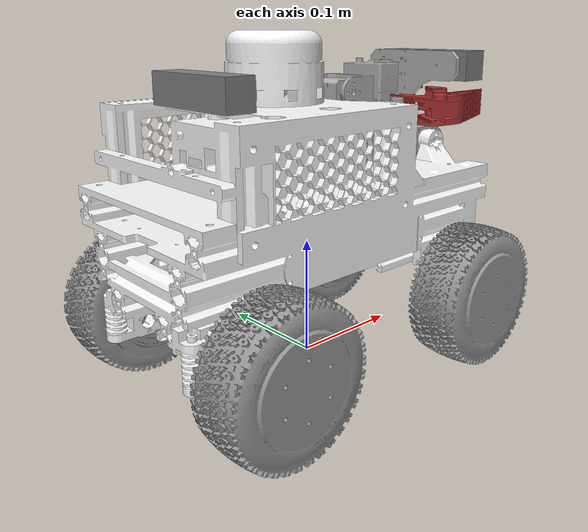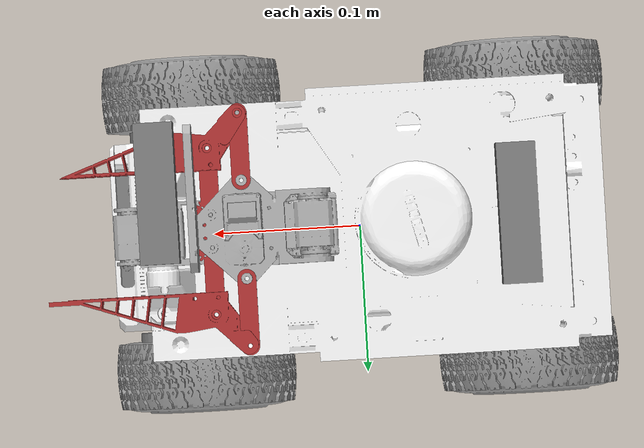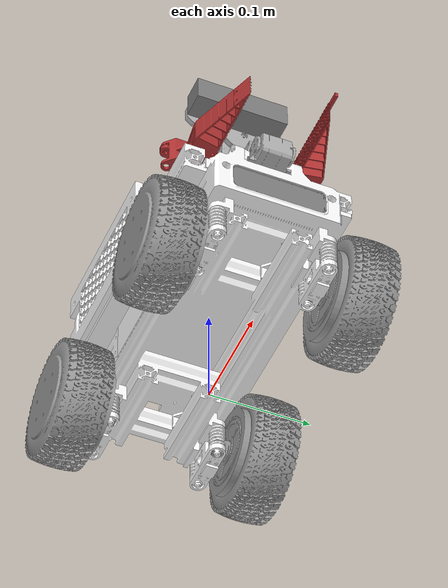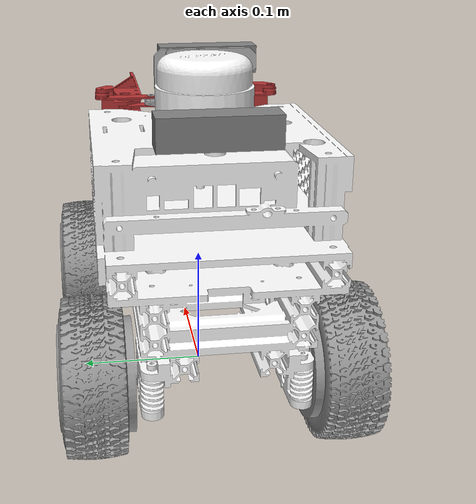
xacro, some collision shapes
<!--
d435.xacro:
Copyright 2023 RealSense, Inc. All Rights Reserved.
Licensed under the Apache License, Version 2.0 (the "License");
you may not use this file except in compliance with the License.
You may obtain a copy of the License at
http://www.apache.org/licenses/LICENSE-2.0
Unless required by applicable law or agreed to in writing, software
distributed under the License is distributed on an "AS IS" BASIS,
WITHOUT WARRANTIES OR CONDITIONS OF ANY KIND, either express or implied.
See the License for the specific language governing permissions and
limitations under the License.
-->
<?xml version="1.0"?>
<robot xmlns:xacro="http://www.ros.org/wiki/xacro"  name="quac_robot">

    <xacro:property name="mesh_scale" value="1"/>
    <xacro:arg name="mesh_folder" default="mesh_folder_path/"/>
    <xacro:property name="mesh_folder" value="$(arg mesh_folder)"/>

    <xacro:include filename="inertial_macros.xacro" />
    <xacro:include filename="servo.xacro" />
    <xacro:include filename="d435.xacro" />
    <xacro:include filename="oak_d_lite.xacro" />

    <xacro:include filename="version_6/chassis.xacro" />

    <link name="base_link"/>

    <joint name="base_footprint_joint" type="fixed">
        <parent link="base_link"/>
        <child link="base_footprint"/>
        <origin xyz="0 0 0" rpy="0 0 0"/>
    </joint>

    <link name="base_footprint"/>

</robot>

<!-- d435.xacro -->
<!-- modified by wggRobotics-->

<!--
This is the URDF model for the RealSense 430 camera, in its
aluminum peripherial evaluation case.
-->

<robot xmlns:xacro="http://ros.org/wiki/xacro">
  <!-- Includes -->

  <material name="aluminum">
    <color rgba="0.5 0.5 0.5 1"/>
  </material>

  <xacro:macro name="sensor_d435" params="parent *origin name:=camera use_nominal_extrinsics:=false">
    <xacro:property name="M_PI" value="3.1415926535897931" />

    <!-- The following values are approximate, and the camera node
     publishing TF values with actual calibrated camera extrinsic values -->
    <xacro:property name="d435_cam_depth_to_stereo_left_offset" value="0.0"/>
    <xacro:property name="d435_cam_depth_to_stereo_right_offset" value="-0.050"/>
    <xacro:property name="d435_cam_depth_to_color_offset" value="0.015"/>

    <!-- The following values model the aluminum peripherial case for the
  	D435 camera, with the camera joint represented by the actual
  	peripherial camera tripod mount -->
    <xacro:property name="d435_cam_width" value="0.090"/>
    <xacro:property name="d435_cam_height" value="0.025"/>
    <xacro:property name="d435_cam_depth" value="0.02505"/>
    <xacro:property name="d435_cam_mount_from_center_offset" value="0.0149"/>
    <!-- glass cover is 0.1 mm inwards from front aluminium plate -->
    <xacro:property name="d435_glass_to_front" value="0.1e-3"/>
    <!-- see datasheet Revision 007, Fig. 4-4 page 65 -->
    <xacro:property name="d435_zero_depth_to_glass" value="4.2e-3"/>
    <!-- convenience precomputation to avoid clutter-->
    <xacro:property name="d435_mesh_x_offset" value="${d435_cam_mount_from_center_offset-d435_glass_to_front-d435_zero_depth_to_glass}"/>

    <!-- The following offset is relative the the physical D435 camera peripherial
  	camera tripod mount -->
    <xacro:property name="d435_cam_depth_px" value="${d435_cam_mount_from_center_offset}"/>
    <xacro:property name="d435_cam_depth_py" value="0.0175"/>
    <xacro:property name="d435_cam_depth_pz" value="${d435_cam_height/2}"/>

    <!-- camera body, with origin at bottom screw mount -->
    <joint name="${name}_joint" type="fixed">
      <xacro:insert_block name="origin" />
      <parent link="${parent}"/>
      <child link="${name}_bottom_screw_frame" />
    </joint>
    <link name="${name}_bottom_screw_frame"/>

    <joint name="${name}_link_joint" type="fixed">
      <origin xyz="${d435_mesh_x_offset} ${d435_cam_depth_py} ${d435_cam_depth_pz}" rpy="0 0 0"/>
      <parent link="${name}_bottom_screw_frame"/>
      <child link="${name}_link" />
    </joint>

    <link name="${name}_link">
      <visual>
        <!-- the mesh origin is at front plate in between the two infrared camera axes -->
        <origin xyz="${d435_zero_depth_to_glass + d435_glass_to_front} ${-d435_cam_depth_py} 0" rpy="${M_PI/2} 0 ${M_PI/2}"/>
        <geometry>
          <mesh filename="${mesh_folder}d435.dae" />
        </geometry>
        <material name="aluminum" />
      </visual>
      <collision>
        <origin xyz="0 ${-d435_cam_depth_py} 0" rpy="0 0 0"/>
        <geometry>
          <box size="${d435_cam_depth} ${d435_cam_width} ${d435_cam_height}"/>
        </geometry>
      </collision>
      <inertial>
        <!-- The following are not reliable values, and should not be used for modeling -->
        <mass value="0.072" />
        <origin xyz="0 0 0" />
        <inertia ixx="0.003881243" ixy="0.0" ixz="0.0" iyy="0.000498940" iyz="0.0" izz="0.003879257" />
      </inertial>
    </link>

    <!-- Use the nominal extrinsics between camera frames if the calibrated extrinsics aren't being published. e.g. running the device in simulation  -->
    <xacro:if value="${use_nominal_extrinsics}">
      <!-- camera depth joints and links -->
      <joint name="${name}_depth_joint" type="fixed">
        <origin xyz="0 0 0" rpy="0 0 0"/>
        <parent link="${name}_link"/>
        <child link="${name}_depth_frame" />
      </joint>
      <link name="${name}_depth_frame"/>

      <joint name="${name}_depth_optical_joint" type="fixed">
        <origin xyz="0 0 0" rpy="${-M_PI/2} 0 ${-M_PI/2}" />
        <parent link="${name}_depth_frame" />
        <child link="${name}_depth_optical_frame" />
      </joint>
      <link name="${name}_depth_optical_frame"/>

      <!-- camera left IR joints and links -->
      <joint name="${name}_stereo_left_joint" type="fixed">
        <origin xyz="0 ${d435_cam_depth_to_stereo_left_offset} 0" rpy="0 0 0" />
        <parent link="${name}_link" />
        <child link="${name}_stereo_left_frame" />
      </joint>
      <link name="${name}_stereo_left_frame"/>

      <joint name="${name}_stereo_left_optical_joint" type="fixed">
        <origin xyz="0 0 0" rpy="${-M_PI/2} 0 ${-M_PI/2}" />
        <parent link="${name}_stereo_left_frame" />
        <child link="${name}_stereo_left_optical_frame" />
      </joint>
      <link name="${name}_stereo_left_optical_frame"/>

      <!-- camera right IR joints and links -->
      <joint name="${name}_stereo_right_joint" type="fixed">
        <origin xyz="0 ${d435_cam_depth_to_stereo_right_offset} 0" rpy="0 0 0" />
        <parent link="${name}_link" />
        <child link="${name}_stereo_right_frame" />
      </joint>
      <link name="${name}_stereo_right_frame"/>

      <joint name="${name}_stereo_right_optical_joint" type="fixed">
        <origin xyz="0 0 0" rpy="${-M_PI/2} 0 ${-M_PI/2}" />
        <parent link="${name}_stereo_right_frame" />
        <child link="${name}_stereo_right_optical_frame" />
      </joint>
      <link name="${name}_stereo_right_optical_frame"/>

      <!-- camera color joints and links -->
      <joint name="${name}_color_joint" type="fixed">
        <origin xyz="0 ${d435_cam_depth_to_color_offset} 0" rpy="0 0 0" />
        <parent link="${name}_link" />
        <child link="${name}_color_frame" />
      </joint>
      <link name="${name}_color_frame"/>

      <joint name="${name}_color_optical_joint" type="fixed">
        <origin xyz="0 0 0" rpy="${-M_PI/2} 0 ${-M_PI/2}" />
        <parent link="${name}_color_frame" />
        <child link="${name}_color_optical_frame" />
      </joint>
      <link name="${name}_color_optical_frame"/>
    </xacro:if>

  </xacro:macro>
</robot>

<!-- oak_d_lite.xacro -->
<robot xmlns:xacro="http://ros.org/wiki/xacro">

	<material name="oak_d_lite_material">
        <color rgba="0.5 0.5 0.5 1"/>
    </material>

	<xacro:macro name="oak_d_lite" params="camera_name parent xyz rpy">

		<xacro:property name="baseline" value="0.075" />

		<xacro:property name="left_name" value="stereo_right" />
		<xacro:property name="right_name" value="stereo_left" />

		<link name="${camera_name}" />

		<joint name="${camera_name}_center_joint" type="fixed">
			<parent link="${parent}" />
			<child link="${camera_name}" />
			<origin xyz="${xyz}" rpy="${rpy}" />
		</joint>

		<link name="${camera_name}_model_origin">
			<visual>
				<origin xyz="0 0 0" rpy="0 0 0" />
				<geometry>
					<mesh filename="${mesh_folder}oak_d_lite.stl" />
				</geometry>
				<material name="oak_d_lite_material"/>
			</visual>
			<collision>
				<origin xyz="0 0 0" rpy="0 0 0" />
				<geometry>
					<mesh filename="${mesh_folder}oak_d_lite.stl" />
				</geometry>
				<material name="oak_d_lite_material"/>
			</collision>
		</link>

		<joint name="${camera_name}_model_origin_joint" type="fixed">
			<parent link="${camera_name}" />
			<child link="${camera_name}_model_origin" />
			<origin xyz="0 0 0" rpy="${pi/2} 0 ${pi/2}" />
		</joint>

		<!-- RGB Camera -->
		<link name="${camera_name}_color_frame" />

		<joint name="${camera_name}_rgb_camera_joint" type="fixed">
			<parent link="${camera_name}" />
			<child link="${camera_name}_color_frame" />
			<origin xyz="0 0 0" rpy="0 0 0" />
		</joint>

		<link name="${camera_name}_imu"/>

		<joint name="${camera_name}_imu_joint" type="fixed">
			<parent link="${camera_name}_color_frame"/>
			<child link="${camera_name}_imu"/>

			<origin xyz="-0.00315 0.0006439 -0.0002" rpy="-${pi/2} 0.0 ${pi/2}"/>
		</joint>

		<link name="${camera_name}_color_optical_frame" />

		<joint name="${camera_name}_rgb_camera_optical_joint" type="fixed">
			<origin xyz="0 0 0" rpy="-${pi/2} 0.0 -${pi/2}" />
			<parent link="${camera_name}_color_frame" />
			<child link="${camera_name}_color_optical_frame" />
		</joint>

		<!-- Left Camera -->
		<link name="${camera_name}_${left_name}_frame" />

		<joint name="${camera_name}_left_camera_joint" type="fixed">
			<parent link="${camera_name}" />
			<child link="${camera_name}_${left_name}_frame" />
			<origin xyz="0 ${baseline/2} 0" rpy="0 0 0" />
		</joint>

		<link name="${camera_name}_${left_name}_optical_frame" />

		<joint name="${camera_name}_left_camera_optical_joint" type="fixed">
			<origin xyz="0 0 0" rpy="-${pi/2} 0.0 -${pi/2}" />
			<parent link="${camera_name}_${left_name}_frame" />
			<child link="${camera_name}_${left_name}_optical_frame" />
		</joint>

		<!-- right Camera -->
		<link name="${camera_name}_${right_name}_frame" />

		<joint name="${camera_name}_right_camera_joint" type="fixed">
			<parent link="${camera_name}" />
			<child link="${camera_name}_${right_name}_frame" />
			<origin xyz="0 -${baseline/2} 0" rpy="0 0 0" />
		</joint>

		<link name="${camera_name}_${right_name}_optical_frame" />

		<joint name="${camera_name}_right_camera_optical_joint" type="fixed">
			<origin xyz="0 0 0" rpy="-${pi/2} 0.0 -${pi/2}" />
			<parent link="${camera_name}_${right_name}_frame" />
			<child link="${camera_name}_${right_name}_optical_frame" />
		</joint>

	</xacro:macro>

</robot>

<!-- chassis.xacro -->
<robot xmlns:xacro="http://www.ros.org/wiki/xacro">

    <xacro:include filename="arm_v2.xacro" />
    <xacro:include filename="wheels.xacro" />

    <material name="chassis_material">
        <color rgba="1.0 1.0 1.0 1.0" />
    </material>

    <joint name="chassis_joint" type="fixed">
        <parent link="base_link"/>
        <child link="chassis"/>
        <origin xyz="0 0 0.13" rpy="0 0 0"/>
    </joint>

    <link name="chassis">
        <xacro:inertial_box mass="2.5" x="0.31" y="0.12" z="0.07">
            <origin xyz="0 0 -0.005" rpy="0 0 0"/>
        </xacro:inertial_box>
        <collision>
            <origin xyz="0 0 -0.005" rpy="0 0 0"/>
            <geometry>
                <box size="0.31 0.12 0.07" />
            </geometry>
        </collision>
        <collision>
            <origin xyz="-0.055 0 0.06" rpy="0 0 0"/>
            <geometry>
                <box size="0.13 0.16 0.06" />
            </geometry>
        </collision>
        <visual>
            <origin xyz="0 0 0" rpy="0 0 0"/>
            <geometry>
                <mesh filename="${mesh_folder}version_6/chassis_reduced.stl" scale="${mesh_scale} ${mesh_scale} ${mesh_scale}"/>
            </geometry>
            <material name="chassis_material"/>
        </visual>
    </link>

    <joint name="laser_joint" type="fixed">
        <parent link="chassis"/>
        <child link="laser"/>
        <origin xyz="-0.035 0.0 0.127" rpy="0 0 ${-pi/2}"/>
    </joint>

    <link name="laser"/>

    <xacro:sensor_d435 parent="chassis" name="camera_back" use_nominal_extrinsics="true">
        <origin xyz="-0.09 0.0 0.09" rpy="0 0 ${pi}"/>
    </xacro:sensor_d435>

	<xacro:oak_d_lite camera_name="camera_front" parent="chassis" xyz="0.16 0 -0.025" rpy="${pi} 0 0"/>

</robot>

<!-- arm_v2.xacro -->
<robot xmlns:xacro="http://www.ros.org/wiki/xacro">

    <xacro:include filename="gripper.xacro" />

    <material name="arm_material">
        <color rgba="0.7 0.7 0.7 1.0" />
    </material>

    <joint name="arm_base_joint" type="fixed">
        <parent link="chassis"/>
        <child link="arm_base_link"/>
        <origin xyz="0.15 0 0.0445" rpy="${pi/2} 0 0"/>
    </joint>

    <link name="arm_base_link">
        <xacro:inertial_box mass="0.1" x="0.01" y="0.01" z="0.01">
            <origin xyz="0 0 0" rpy="0 0 0"/>
        </xacro:inertial_box>
    </link>

    <joint name="arm_segment_0_joint" type="revolute">
        <parent link="arm_base_link"/>
        <child link="arm_segment_0"/>
        <origin xyz="0 0 0" rpy="0 0 0"/>
        <axis xyz="0 0 1" />

        <limit lower="-3.826" upper="0" velocity="0" effort="0"/>
    </joint>

    <link name="arm_segment_0">
        <xacro:inertial_box mass="0.15" x="0.09" y="0.025" z="0.035">
            <origin xyz="-0.035 0 0" rpy="0 0 0"/>
        </xacro:inertial_box>
        <collision>
            <origin xyz="0 0 0" rpy="${-pi/2} 0 0"/>
            <geometry>
                <mesh filename="${mesh_folder}version_6/arm_v2/arm_segment_0_reduced.stl" scale="${mesh_scale} ${mesh_scale} ${mesh_scale}"/>
            </geometry>
            <material name="arm_material"/>
        </collision>
        <visual>
            <origin xyz="0 0 0" rpy="${-pi/2} 0 0"/>
            <geometry>
                <mesh filename="${mesh_folder}version_6/arm_v2/arm_segment_0_reduced.stl" scale="${mesh_scale} ${mesh_scale} ${mesh_scale}"/>
            </geometry>
            <material name="arm_material"/>
        </visual>
    </link>

    <joint name="arm_segment_1_joint" type="revolute">
        <parent link="arm_segment_0"/>
        <child link="arm_segment_1"/>
        <origin xyz="-0.1 0 0" rpy="0 0 0"/>
        <axis xyz="0 0 1" />

        <limit lower="-0.785398163" upper="1.570796327" velocity="0" effort="0"/>
    </joint>

    <link name="arm_segment_1">
        <xacro:inertial_box mass="0.1" x="0.025" y="0.075" z="0.035">
            <origin xyz="-0.02 0.025 0" rpy="0 0 0"/>
        </xacro:inertial_box>
        <collision>
            <origin xyz="-0.02 0.05 0" rpy="${pi/2} 0 0"/>
            <geometry>
                <mesh filename="${mesh_folder}version_6/arm_v2/arm_segment_1_reduced.stl" scale="${mesh_scale} ${mesh_scale} ${mesh_scale}"/>
            </geometry>
            <material name="arm_material"/>
        </collision>

        <visual>
            <origin xyz="-0.02 0.05 0" rpy="${pi/2} 0 0"/>
            <geometry>
                <mesh filename="${mesh_folder}version_6/arm_v2/arm_segment_1_reduced.stl" scale="${mesh_scale} ${mesh_scale} ${mesh_scale}"/>
            </geometry>
            <material name="arm_material"/>
        </visual>
    </link>

    <joint name="arm_segment_2_joint" type="revolute">
        <parent link="arm_segment_1"/>
        <child link="arm_segment_2"/>
        <origin xyz="-0.02 0.05 0" rpy="0 0 0"/>
        <axis xyz="0 0 1" />

        <limit lower="0" upper="3.091592654" velocity="0" effort="0"/>
    </joint>

    <link name="arm_segment_2">
        <xacro:inertial_box mass="0.05" x="0.05" y="0.03" z="0.035">
            <origin xyz="0.045 0 0" rpy="0 0 0"/>
        </xacro:inertial_box>
        <collision>
            <origin xyz="0 0 0" rpy="${-pi/2} 0 0"/>
            <geometry>
                <mesh filename="${mesh_folder}version_6/arm_v2/arm_segment_2_reduced.stl" scale="${mesh_scale} ${mesh_scale} ${mesh_scale}"/>
            </geometry>
            <material name="arm_material"/>
        </collision>

        <visual>
            <origin xyz="0 0 0" rpy="${-pi/2} 0 0"/>
            <geometry>
                <mesh filename="${mesh_folder}version_6/arm_v2/arm_segment_2_reduced.stl" scale="${mesh_scale} ${mesh_scale} ${mesh_scale}"/>
            </geometry>
            <material name="arm_material"/>
        </visual>
    </link>

    <joint name="gripper_base_joint" type="fixed">
        <parent link="arm_segment_2" />
        <child link="gripper_base" />
        <origin xyz="0.066 -0.0155 -0.0002 " rpy="${-pi/2} 0 0"/>
        <axis xyz="0 0 1" />
    </joint>

</robot>

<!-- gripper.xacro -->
<robot xmlns:xacro="http://www.ros.org/wiki/xacro">

    <material name="gripper_material">
        <color rgba="0.7 0.2 0.2 1.0" />
    </material>

    <link name="gripper_base">
        <inertial>
            <origin xyz="0 0 0" rpy="0 0 0"/>
            <mass value="0.1"/>
            <inertia ixx="0.001" ixy="0.0" ixz="0.0" iyy="0.001" iyz="0.0" izz="0.001"/>
        </inertial>
    </link>

    <xacro:sensor_d435 parent="gripper_base" name="camera_gripper" use_nominal_extrinsics="true">
        <origin xyz="0.022 -0.0255 0.0225" rpy="0 0 0"/>
    </xacro:sensor_d435>

    <joint name="gripper_joint" type="revolute">
        <parent link="gripper_base" />
        <child link="gripper_link" />
        <origin xyz="-0.0207 0.0125 0.0355" rpy="0 0 0"/>
        <axis xyz="0 0 1" />

        <limit lower="0" upper="0" velocity="0" effort="0"/>
    </joint>

    <link name="gripper_link">
        <inertial>
            <origin xyz="0 0 0" rpy="0 0 0"/>
            <mass value="0.1"/>
            <inertia ixx="0.001" ixy="0.0" ixz="0.0" iyy="0.001" iyz="0.0" izz="0.001"/>
        </inertial>
    </link>

    <joint name="arm_end_effector_joint" type="fixed">
        <parent link="gripper_base" />
        <child link="arm_end_effector" />
        <origin xyz="0.1 -0.0002 0" rpy="${pi/2} 0 0"/>
    </joint>

    <link name="arm_end_effector">
        <inertial>
            <origin xyz="0 0 0" rpy="0 0 0"/>
            <mass value="0.1"/>
            <inertia ixx="0.01" ixy="0.0" ixz="0.0" iyy="0.01" iyz="0.0" izz="0.01"/>
        </inertial>
    </link>

    <xacro:macro name="gripper_side" params="side multiplier">
        <joint name="gripper_${side}_back_piece_joint" type="continuous">
            <parent link="gripper_base" />
            <child link="gripper_${side}_back_piece" />
            <origin xyz="-0.021 ${-multiplier * 0.0315} 0.0105" rpy="0 0 0"/>
            <mimic joint="gripper_joint" multiplier="${-multiplier}" offset="${multiplier * pi/2}"/>
            <axis xyz="0 0 1" />
        </joint>

        <link name="gripper_${side}_back_piece">
            <inertial>
                <origin xyz="0 0 0" rpy="0 0 0"/>
                <mass value="0.02"/>
                <inertia ixx="0.01" ixy="0.0" ixz="0.0" iyy="0.01" iyz="0.0" izz="0.01"/>
            </inertial>
            <visual>
                <origin xyz="0 0 0" rpy="0 0 ${pi/2+multiplier*pi/2}"/>
                <geometry>
                    <mesh filename="${mesh_folder}version_6/gripper_back_piece.stl" scale="${mesh_scale} ${mesh_scale} ${mesh_scale}"/>
                </geometry>
                <material name="gripper_material"/>
            </visual>
            <collision>
                <origin xyz="0 0 0" rpy="0 0 ${pi/2+multiplier*pi/2}"/>
                <geometry>
                    <mesh filename="${mesh_folder}version_6/gripper_back_piece.stl" scale="${mesh_scale} ${mesh_scale} ${mesh_scale}"/>
                </geometry>
                <material name="gripper_material"/>
            </collision>
        </link>

        <joint name="gripper_${side}_front_piece_joint" type="continuous">
            <parent link="gripper_base" />
            <child link="gripper_${side}_front_piece" />
            <origin xyz="0.0 ${-multiplier * 0.0105} 0.0" rpy="0 0 0"/>
            <mimic joint="gripper_joint" multiplier="${-multiplier}" offset="${multiplier * pi/2}"/>
            <axis xyz="0 0 1" />
        </joint>

        <link name="gripper_${side}_front_piece">
            <inertial>
                <origin xyz="0 0 0" rpy="0 0 0"/>
                <mass value="0.02"/>
                <inertia ixx="0.01" ixy="0.0" ixz="0.0" iyy="0.01" iyz="0.0" izz="0.01"/>
            </inertial>
            <visual>
                <origin xyz="0 0 0" rpy="0 0 ${pi/2+multiplier*pi/2}"/>
                <geometry>
                    <mesh filename="${mesh_folder}version_6/gripper_front_piece.stl" scale="${mesh_scale} ${mesh_scale} ${mesh_scale}"/>
                </geometry>
                <material name="gripper_material"/>
            </visual>
            <collision>
                <origin xyz="0 0 0" rpy="0 0 ${pi/2+multiplier*pi/2}"/>
                <geometry>
                    <mesh filename="${mesh_folder}version_6/gripper_front_piece.stl" scale="${mesh_scale} ${mesh_scale} ${mesh_scale}"/>
                </geometry>
                <material name="gripper_material"/>
            </collision>
        </link>

        <joint name="gripper_${side}_joint" type="continuous">
            <parent link="gripper_${side}_back_piece" />
            <child link="gripper_${side}" />
            <origin xyz="0.0 ${-multiplier * 0.043} 0.006" rpy="0 0 0"/>
            <mimic joint="gripper_joint" multiplier="${multiplier}" offset="${-multiplier * pi/2}"/>
            <axis xyz="0 0 1" />
        </joint>

        <link name="gripper_${side}">
            <inertial>
                <origin xyz="0 0 0" rpy="0 0 0"/>
                <mass value="0.1"/>
                <inertia ixx="0.01" ixy="0.0" ixz="0.0" iyy="0.01" iyz="0.0" izz="0.01"/>
            </inertial>
            <visual>
                <origin xyz="0 0 0" rpy="0 0 0"/>
                <geometry>
                    <mesh filename="${mesh_folder}version_6/gripper_${side}.stl" scale="${mesh_scale} ${mesh_scale} ${mesh_scale}"/>
                </geometry>
                <material name="gripper_material"/>
            </visual>
            <collision>
                <origin xyz="0 0 0" rpy="0 0 0"/>
                <geometry>
                    <mesh filename="${mesh_folder}version_6/gripper_${side}.stl" scale="${mesh_scale} ${mesh_scale} ${mesh_scale}"/>
                </geometry>
                <material name="gripper_material"/>
            </collision>
        </link>

    </xacro:macro>

    <xacro:gripper_side side="left" multiplier="-1.0" />
    <xacro:gripper_side side="right" multiplier="1.0" />

</robot>

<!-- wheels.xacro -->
<robot xmlns:xacro="http://www.ros.org/wiki/xacro">

    <material name="wheel_material">
        <color rgba="0.6 0.6 0.6 1.0" />
    </material>

    <xacro:macro name="wheel" params="name xyz visual_rpy collision_xyz">
        <joint name="${name}_joint" type="continuous">
            <origin xyz="${xyz}" rpy="0 0 0"/>
            <parent link="chassis"/>
            <child link="${name}"/>
            <axis xyz="0.0 1.0 0.0"/>
        </joint>

        <link name="${name}">
            <visual>
                <origin xyz="0 0 0" rpy="${visual_rpy}"/>
                <geometry>
                    <mesh filename="${mesh_folder}version_6/wheel_reduced.stl" scale="${mesh_scale} ${mesh_scale} ${mesh_scale}"/>
                </geometry>
                <material name="wheel_material"/>
            </visual>
            <collision>
                <origin xyz="0 0 0" rpy="${visual_rpy}"/>
                <geometry>
                    <mesh filename="${mesh_folder}version_6/wheel_reduced.stl" scale="${mesh_scale} ${mesh_scale} ${mesh_scale}"/>
                </geometry>
                <material name="wheel_material"/>
                <surface>
                    <friction>
                        <ode>
                            <mu>1.0</mu>       <!-- Static friction -->
                            <mu2>1.0</mu2>     <!-- Dynamic friction -->
                        </ode>
                    </friction>
                </surface>
            </collision>
            <xacro:inertial_cylinder mass="0.1" radius="0.06" length="0.04">
                <origin xyz="0 0 0" rpy="${pi/2} 0 0"/>
            </xacro:inertial_cylinder>

        </link>

    </xacro:macro>

    <!-- Four wheels -->

    <xacro:wheel name="wheel_front_left" xyz="0.109 0.063 -0.079" visual_rpy="0 0 ${pi}" collision_xyz="0 0.03 0" />
    <xacro:wheel name="wheel_front_right" xyz="0.109 -0.063 -0.079" visual_rpy="0 0 0" collision_xyz="0 -0.03 0" />
    <xacro:wheel name="wheel_rear_left" xyz="-0.109 0.063 -0.079" visual_rpy="0 0 ${pi}" collision_xyz="0 0.03 0" />
    <xacro:wheel name="wheel_rear_right" xyz="-0.109 -0.063 -0.079" visual_rpy="0 0 0" collision_xyz="0 -0.03 0" />

</robot>
